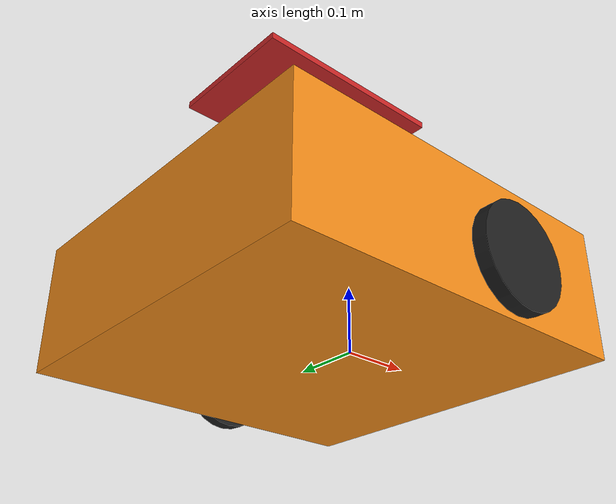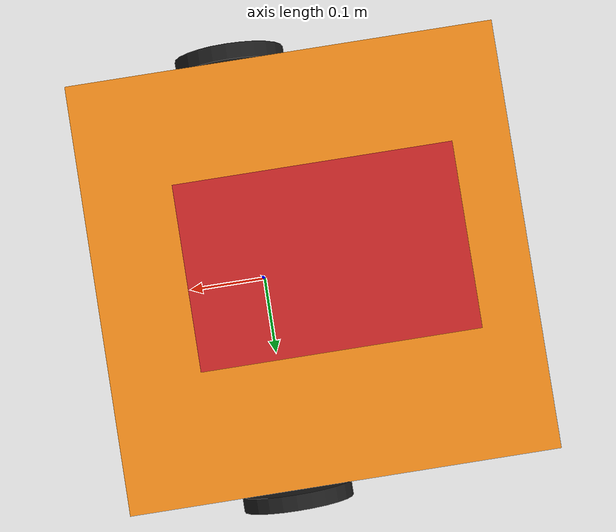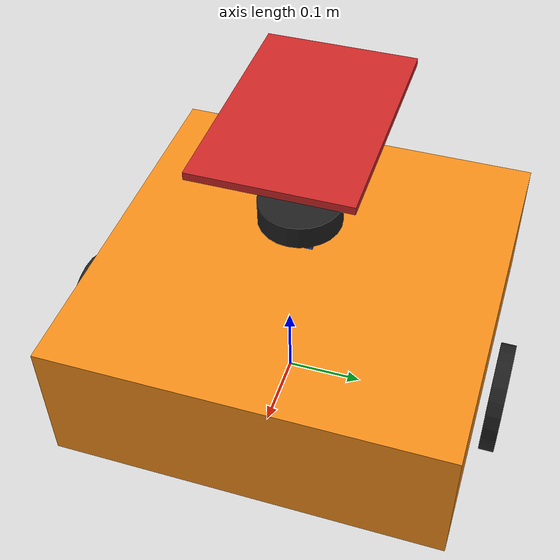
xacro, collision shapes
<?xml version="1.0" ?>
<robot name="amazon_robot2" xmlns:xacro="http://ros.org/wiki/xacro">
  <xacro:include filename="$(find amazon_robot_description)/urdf/common_properties.xacro"/>
  <xacro:include filename="$(find amazon_robot_description)/urdf/amazon_warehouse_robot.gazebo.xacro"/>
  <xacro:include filename="$(find amazon_robot_description)/urdf/amazon_warehouse_robot.transmission.xacro"/>

  <link name="base_footprint"/>

  <joint name="base_joint" type="fixed">
    <parent link="base_footprint"/>
    <child link="base_link" />
    <origin xyz="0 0 0.010" rpy="0 0 0"/>
  </joint>

  <link name="base_link">
    <visual>
      <origin xyz="-0.064 0 0.0" rpy="0 0 0"/>
      <geometry>
        <mesh filename="package://amazon_robot_description/meshes/bases/waffle_pi_base.stl" scale="0.002 0.002 0.002"/>
      </geometry>
      <material name="orange"/>
    </visual>

    <collision>
      <origin xyz="-0.064 0 0.047" rpy="0 0 0"/>
      <geometry>
        <box size="0.532 0.532 0.188"/>
      </geometry>
    </collision>

    <inertial>
      <origin xyz="0 0 0" rpy="0 0 0"/>
      <mass value="1.3729096e+00"/>
      <inertia ixx="8.7002718e-03" ixy="-4.7576583e-05" ixz="1.1160499e-04"
               iyy="8.6195418e-03" iyz="-3.5422299e-06"
               izz="1.4612727e-02" />
    </inertial>
  </link>

  <joint name="wheel_left_joint" type="continuous">
    <parent link="base_link"/>
    <child link="wheel_left_link"/>
    <origin xyz="0.0 0.288 0.023" rpy="-1.57 0 0"/>
    <axis xyz="0 0 1"/>
  </joint>

  <link name="wheel_left_link">
    <visual>
      <origin xyz="0 0 0" rpy="1.57 0 0"/>
      <geometry>
        <mesh filename="package://amazon_robot_description/meshes/wheels/left_tire.stl" scale="0.002 0.002 0.002"/>
      </geometry>
      <material name="dark"/>
    </visual>

    <collision>
      <origin xyz="0 0 0" rpy="0 0 0"/>
      <geometry>
        <cylinder length="0.020" radius="0.072"/>
      </geometry>
    </collision>

    <inertial>
      <origin xyz="0 0 0" />
      <mass value="2.8498940e-02" />
      <inertia ixx="1.1175580e-05" ixy="-4.2369783e-11" ixz="-5.9381719e-09"
               iyy="1.1192413e-05" iyz="-1.4400107e-11"
               izz="2.0712558e-05" />
      </inertial>
  </link>

  <joint name="wheel_right_joint" type="continuous">
    <parent link="base_link"/>
    <child link="wheel_right_link"/>
    <origin xyz="0.0 -0.288 0.023" rpy="-1.57 0 0"/>
    <axis xyz="0 0 1"/>
  </joint>

  <link name="wheel_right_link">
    <visual>
      <origin xyz="0 0 0" rpy="1.57 0 0"/>
      <geometry>
        <mesh filename="package://amazon_robot_description/meshes/wheels/right_tire.stl" scale="0.002 0.002 0.002"/>
      </geometry>
      <material name="dark"/>
    </visual>

    <collision>
      <origin xyz="0 0 0" rpy="0 0 0"/>
      <geometry>
        <cylinder length="0.020" radius="0.072"/>
      </geometry>
    </collision>

    <inertial>
      <origin xyz="0 0 0" />
      <mass value="2.8498940e-02" />
      <inertia ixx="1.1175580e-05" ixy="-4.2369783e-11" ixz="-5.9381719e-09"
               iyy="1.1192413e-05" iyz="-1.4400107e-11"
               izz="2.0712558e-05" />
      </inertial>
  </link>

  <joint name="caster_back_right_joint" type="fixed">
    <parent link="base_link"/>
    <child link="caster_back_right_link"/>
    <origin xyz="-0.268 -0.064 -0.016" rpy="-1.57 0 0"/>
  </joint>

  <link name="caster_back_right_link">
    <collision>
      <origin xyz="0 0.001 0" rpy="0 0 0"/>
      <geometry>
        <box size="0.060 0.018 0.040"/>
      </geometry>
    </collision>

    <inertial>
      <origin xyz="0 0 0" />
      <mass value="0.005" />
      <inertia ixx="0.001" ixy="0.0" ixz="0.0"
               iyy="0.001" iyz="0.0"
               izz="0.001" />
    </inertial>
  </link>

  <joint name="caster_back_left_joint" type="fixed">
    <parent link="base_link"/>
    <child link="caster_back_left_link"/>
    <origin xyz="-0.268 0.064 -0.016" rpy="-1.57 0 0"/>
  </joint>

  <link name="caster_back_left_link">
    <collision>
      <origin xyz="0 0.001 0" rpy="0 0 0"/>
      <geometry>
        <box size="0.060 0.018 0.040"/>
      </geometry>
    </collision>

    <inertial>
      <origin xyz="0 0 0" />
      <mass value="0.005" />
      <inertia ixx="0.001" ixy="0.0" ixz="0.0"
               iyy="0.001" iyz="0.0"
               izz="0.001" />
    </inertial>
  </link>

  <joint name="imu_joint" type="fixed">
    <parent link="base_link"/>
    <child link="imu_link"/>
    <origin xyz="0.0 0 0.136" rpy="0 0 0"/>
  </joint>

  <link name="imu_link"/>

  <joint name="scan_joint" type="fixed">
    <parent link="base_link"/>
    <child link="base_scan"/>
    <origin xyz="-0.064 0 0.244" rpy="0 0 0"/>
  </joint>

  <link name="base_scan">
    <visual>
      <origin xyz="0 0 0.0" rpy="0 0 0"/>
      <geometry>
        <mesh filename="package://amazon_robot_description/meshes/sensors/lds.stl" scale="0.002 0.002 0.002"/>
      </geometry>
      <material name="dark"/>
    </visual>

    <collision>
      <origin xyz="0.015 0 -0.0065" rpy="0 0 0"/>
      <geometry>
        <cylinder length="0.0315" radius="0.055"/>
      </geometry>
    </collision>

    <inertial>
      <mass value="0.114" />
      <origin xyz="0 0 0" />
      <inertia ixx="0.001" ixy="0.0" ixz="0.0"
               iyy="0.001" iyz="0.0"
               izz="0.001" />
    </inertial>
  </link>

  <link name="link_platform_mid">
    <origin xyz="0 0 0.0" rpy="0 0 0"/>

    <visual>
      <geometry>
        <box size="0.02 0.02 0.10" />
      </geometry>
      <material name="blue"/>
    </visual>
    <collision>
      <geometry>
        <box size="0.02 0.02 0.10" />
      </geometry>
    </collision>

    <inertial>
      <mass value="1"/>
      <inertia
              ixx="1.0" ixy="0.0" ixz="0.0"
              iyy="1.0" iyz="0.0"
              izz="1.0"/>
    </inertial>

  </link>
  <joint name="platform_joint" type="fixed">
    <parent link="base_link" />
    <child link="link_platform_mid" />
    <origin xyz="-0.08 0 0.20" rpy="0. 0. 0."/>
  </joint>

  <link name="lift_link">
    <origin xyz="0 0 0.0" rpy="0 0 0"/>

    <visual>
      <geometry>
        <box size="0.30 0.20 0.01" />
      </geometry>
      <material name="red"/>
    </visual>
    <collision>
      <geometry>
        <box size="0.30 0.20 0.01" />
      </geometry>
    </collision>
    <inertial>
      <mass value="1"/>
      <inertia
              ixx="1.0" ixy="0.0" ixz="0.0"
              iyy="1.0" iyz="0.0"
              izz="1.0"/>
    </inertial>
  </link>

  <joint name="lift_joint" type="prismatic" >
  <origin xyz="0 0 0.16" rpy="0. 0. 0."/>
    <child link="lift_link" />
    <parent link="link_platform_mid" />
    <axis xyz="0 0 1" rpy="0 0 0"/>
    <limit effort="10000.0" lower="-0.05" upper="0.20" velocity="0.5"/>
  </joint>

<!--               iyy="8.6195418e-03" iyz="-3.5422299e-06"-->

</robot>
